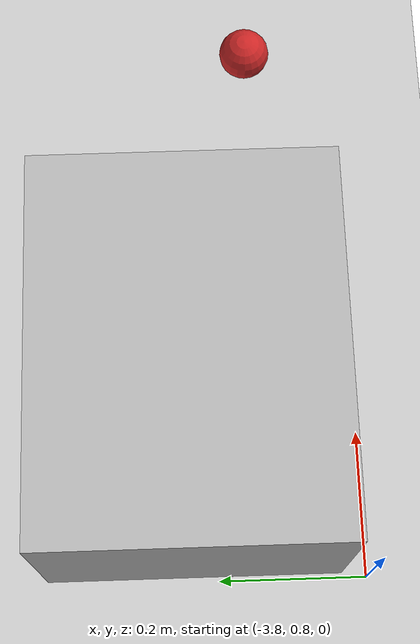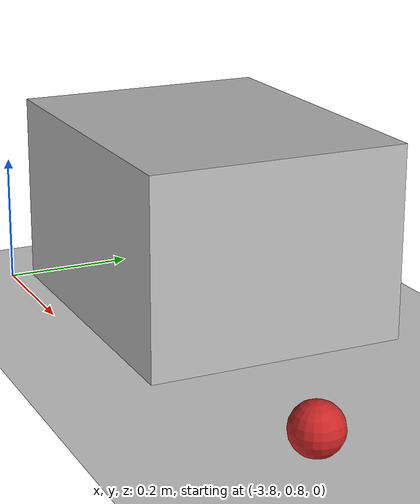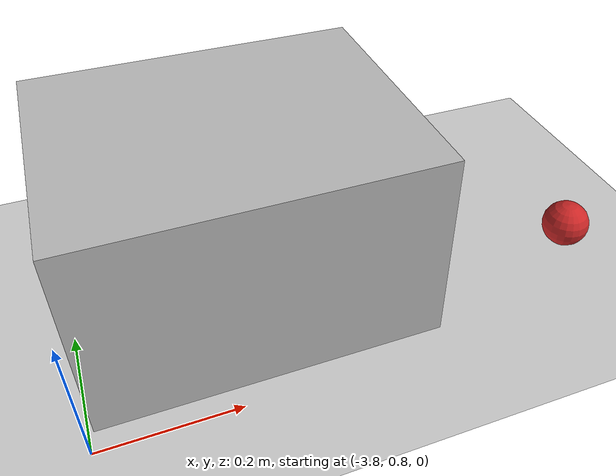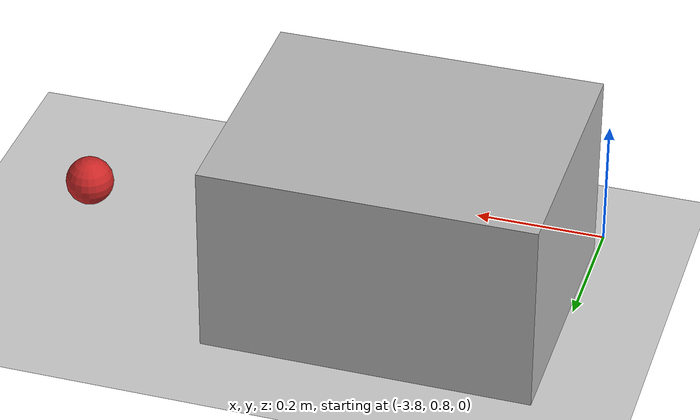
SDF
<sdf version="1.7">
 <world name="default">
  <light name="sun" type="directional">
   <pose>0 0 10 0 -0 0</pose>
   <diffuse>0.8 0.8 0.8 1</diffuse>
   <specular>0.2 0.2 0.2 1</specular>
   <attenuation>
    <range>1000</range>
    <constant>0.9</constant>
    <linear>0.01</linear>
    <quadratic>0.001</quadratic>
   </attenuation>
   <direction>-0.5 0.1 -0.9</direction>
   <spot><inner_angle>0</inner_angle><outer_angle>0</outer_angle><falloff>0</falloff></spot>
  </light>
  <model name="ground_plane">
   <static>1</static>
   <link name="link">
    <collision name="collision">
     <geometry><plane><normal>0 0 1</normal><size>100 100</size></plane></geometry>
     <surface><friction><ode><mu>100</mu><mu2>50</mu2></ode></friction></surface>
    </collision>
    <visual name="visual">
     <cast_shadows>0</cast_shadows>
     <geometry><plane><normal>0 0 1</normal><size>100 100</size></plane></geometry>
     <material>
      <script><uri>file://media/materials/scripts/gazebo.material</uri><name>Gazebo/Grey</name></script>
     </material>
    </visual>
   </link>
  </model>
  <gravity>0 0 -9.8</gravity>
  <magnetic_field>6e-06 2.3e-05 -4.2e-05</magnetic_field>
  <atmosphere type="adiabatic"/>
  <physics type="ode">
   <max_step_size>0.001</max_step_size>
   <real_time_factor>1</real_time_factor>
   <real_time_update_rate>1000</real_time_update_rate>
  </physics>
  <scene><ambient>0.4 0.4 0.4 1</ambient><background>0.7 0.7 0.7 1</background><shadows>1</shadows></scene>
  <spherical_coordinates>
   <surface_model>EARTH_WGS84</surface_model>
   <latitude_deg>0</latitude_deg>
   <longitude_deg>0</longitude_deg>
   <elevation>0</elevation>
   <heading_deg>0</heading_deg>
  </spherical_coordinates>
  <model name="cardboard_box">
   <pose>-3.54346 1.03296 0.149 0 -0 0</pose>
   <link name="link">
    <inertial>
     <mass>2</mass>
     <inertia>
      <ixx>0.0416667</ixx>
      <ixy>0</ixy>
      <ixz>0</ixz>
      <iyy>0.0566667</iyy>
      <iyz>0</iyz>
      <izz>0.0683333</izz>
     </inertia>
    </inertial>
    <collision name="collision">
     <geometry><box><size>0.5 0.4 0.3</size></box></geometry>
     <surface>
      <friction><ode><mu>1</mu><mu2>1</mu2></ode></friction>
      <contact><ode><kp>1e+07</kp><kd>1</kd><min_depth>0.001</min_depth><max_vel>0.1</max_vel></ode></contact>
     </surface>
    </collision>
    <visual name="visual">
     <pose>0 0 -0.15 0 -0 0</pose>
     <geometry>
      <mesh><uri>model://cardboard_box/meshes/cardboard_box.dae</uri><scale>1.25932 1.00745 0.755591</scale></mesh>
     </geometry>
    </visual>
   </link>
  </model>
  <model name="cricket_ball">
   <link name="link">
    <pose>0 0 0.0375 0 -0 0</pose>
    <inertial>
     <mass>0.1467</mass>
     <inertia>
      <ixx>8.25187e-05</ixx>
      <ixy>0</ixy>
      <ixz>0</ixz>
      <iyy>8.25187e-05</iyy>
      <iyz>0</iyz>
      <izz>8.25187e-05</izz>
     </inertia>
    </inertial>
    <collision name="collision">
     <geometry><sphere><radius>0.0375</radius></sphere></geometry>
     <surface>
      <contact>
       <poissons_ratio>0.347</poissons_ratio>
       <elastic_modulus>8.8e+09</elastic_modulus>
       <ode><kp>100000</kp><kd>100</kd><max_vel>100</max_vel><min_depth>0.001</min_depth></ode>
      </contact>
      <friction>
       <torsional>
        <coefficient>1</coefficient>
        <use_patch_radius>0</use_patch_radius>
        <surface_radius>0.01</surface_radius>
       </torsional>
      </friction>
     </surface>
    </collision>
    <visual name="visual">
     <geometry><sphere><radius>0.0375</radius></sphere></geometry>
     <material>
      <script><uri>file://media/materials/scripts/gazebo.material</uri><name>Gazebo/Red</name></script>
     </material>
    </visual>
    <velocity_decay><linear>0</linear><angular>0.005</angular></velocity_decay>
   </link>
   <pose>-3.01182 0.933689 -0.001014 0 -0 0</pose>
  </model>
 </world>
</sdf>
